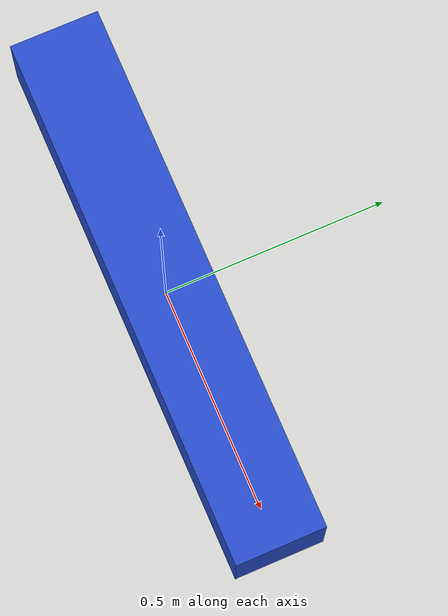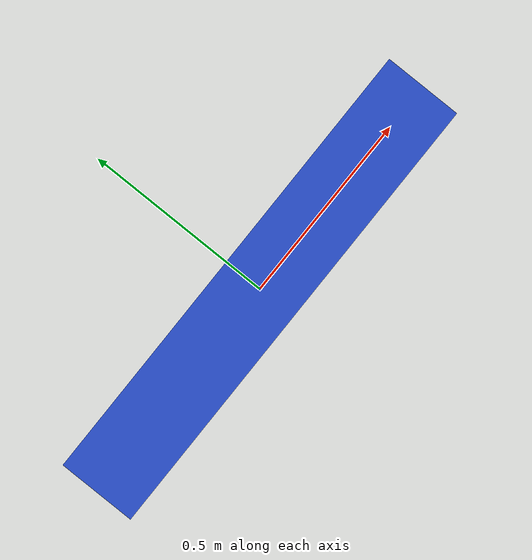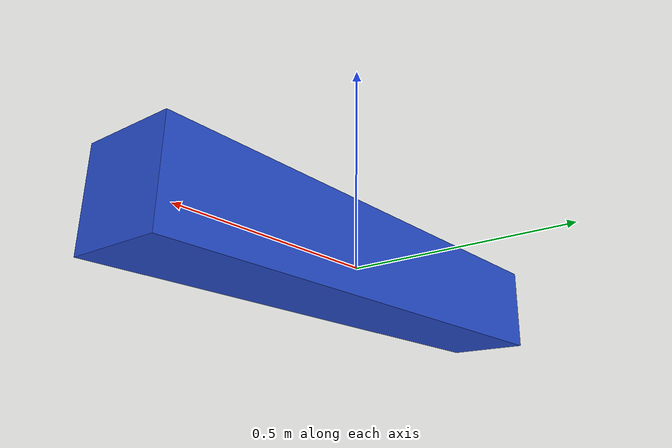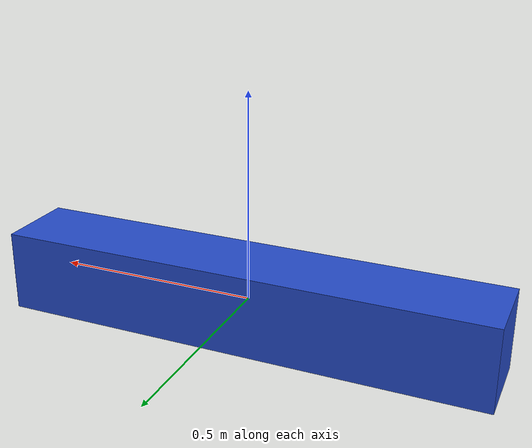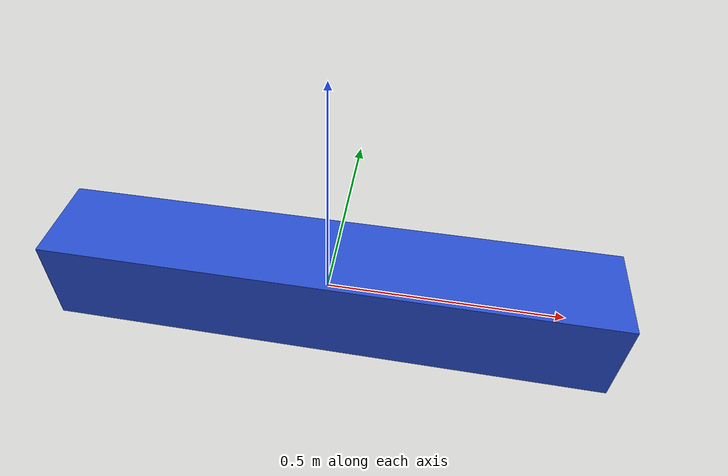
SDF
<?xml version='1.0'?>
<sdf version="1.4">
<model name="brick_blue">
  <pose>0 0 0 0 0 0</pose>
    <link name="grab_here">
      <inertial>
        <mass>1e-5</mass>
        <inertia>
          <ixx>1e-5</ixx>
          <ixy>0.0</ixy>
          <ixz>0.0</ixz>
          <iyy>1e-5</iyy>
          <iyz>0.0</iyz>
          <izz>1e-5</izz>
        </inertia>
      </inertial>
      <collision name="collision">
        <geometry>
          <box>
            <size>1.2 0.2 0.2</size>
          </box>
        </geometry>
      </collision>
      <visual name="visual">
        <geometry>
          <box>
            <size>1.2 0.2 0.2</size>
          </box>
        </geometry>
        <material>
        	<script>
              <uri>file://media/materials/scripts/gazebo.material</uri>
              <name>Gazebo/Blue</name>
            </script>
        </material>
      </visual>
    </link>
  </model>
</sdf>
